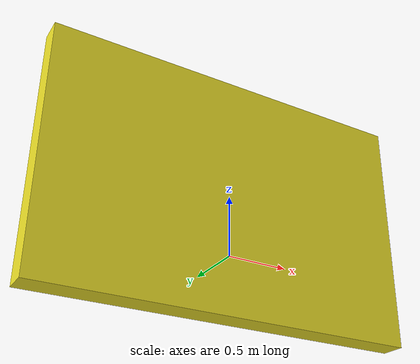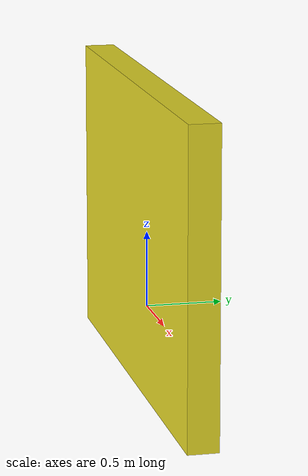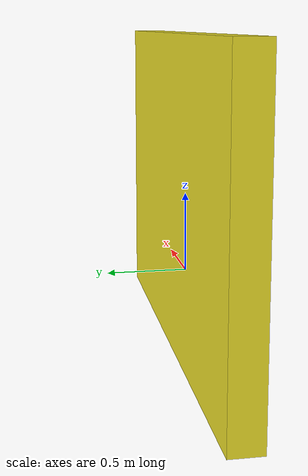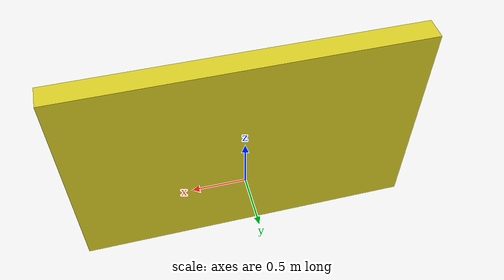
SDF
<?xml version="1.0" ?>
<sdf version="1.4">
  <model name="grasp_wall">
    <pose>0 0 0.5 0 0 0</pose>
    <link name="link">
      <collision name="collision">
        <geometry>
          <box>
            <size>3.1 0.2 2</size>
          </box>
        </geometry>
      </collision>
      <visual name="visual">
        <geometry>
          <box>
            <size>3.1 0.2 2</size>
          </box>
        </geometry>
        <material>
            <script>
              <uri>file://media/materials/scripts/gazebo.material</uri>
              <name>Gazebo/Yellow</name>
            </script>
        </material>
      </visual>
    </link>
  <static>1</static>
  </model>
</sdf>
